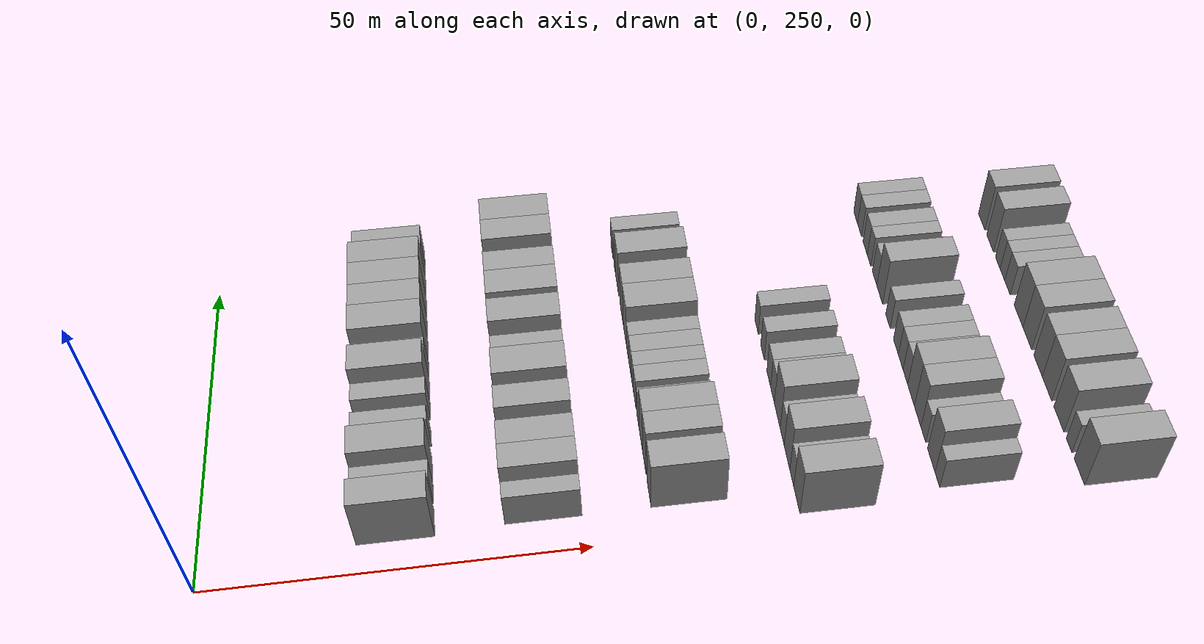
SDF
<sdf version="1.6">
 <world name="default">
  <model name="building_149">
   <static>1</static>
   <pose>25.0000 256.2875 0 0.000000 0.000000 0.000000</pose>
   <link name="link">
    <pose>0 0 4.50 0 0 0</pose>
    <collision name="collision"><geometry><box><size>10.0000 4.0302 9.0000</size></box></geometry></collision>
    <visual name="visual">
     <cast_shadows>0</cast_shadows>
     <geometry><box><size>10.0000 4.0302 9.0000</size></box></geometry>
     <material>
      <script>
       <uri>model://grey_wall/materials/scripts</uri>
       <uri>model://grey_wall/materials/textures</uri>
       <name>vrc/grey_wall</name>
      </script>
     </material>
    </visual>
   </link>
  </model>
  <model name="building_150">
   <static>1</static>
   <pose>25.0000 260.7521 0 0.000000 0.000000 0.000000</pose>
   <link name="link">
    <pose>0 0 3.00 0 0 0</pose>
    <collision name="collision"><geometry><box><size>10.0000 2.8990 6.0000</size></box></geometry></collision>
    <visual name="visual">
     <cast_shadows>0</cast_shadows>
     <geometry><box><size>10.0000 2.8990 6.0000</size></box></geometry>
     <material>
      <script>
       <uri>model://grey_wall/materials/scripts</uri>
       <uri>model://grey_wall/materials/textures</uri>
       <name>vrc/grey_wall</name>
      </script>
     </material>
    </visual>
   </link>
  </model>
  <model name="building_151">
   <static>1</static>
   <pose>25.0000 264.3933 0 0.000000 0.000000 0.000000</pose>
   <link name="link">
    <pose>0 0 4.50 0 0 0</pose>
    <collision name="collision"><geometry><box><size>10.0000 4.3833 9.0000</size></box></geometry></collision>
    <visual name="visual">
     <cast_shadows>0</cast_shadows>
     <geometry><box><size>10.0000 4.3833 9.0000</size></box></geometry>
     <material>
      <script>
       <uri>model://grey_wall/materials/scripts</uri>
       <uri>model://grey_wall/materials/textures</uri>
       <name>vrc/grey_wall</name>
      </script>
     </material>
    </visual>
   </link>
  </model>
  <model name="building_152">
   <static>1</static>
   <pose>25.0000 269.8331 0 0.000000 0.000000 0.000000</pose>
   <link name="link">
    <pose>0 0 3.00 0 0 0</pose>
    <collision name="collision"><geometry><box><size>10.0000 2.4964 6.0000</size></box></geometry></collision>
    <visual name="visual">
     <cast_shadows>0</cast_shadows>
     <geometry><box><size>10.0000 2.4964 6.0000</size></box></geometry>
     <material>
      <script>
       <uri>model://grey_wall/materials/scripts</uri>
       <uri>model://grey_wall/materials/textures</uri>
       <name>vrc/grey_wall</name>
      </script>
     </material>
    </visual>
   </link>
  </model>
  <model name="building_153">
   <static>1</static>
   <pose>25.0000 274.5051 0 0.000000 0.000000 0.000000</pose>
   <link name="link">
    <pose>0 0 3.00 0 0 0</pose>
    <collision name="collision"><geometry><box><size>10.0000 2.8477 6.0000</size></box></geometry></collision>
    <visual name="visual">
     <cast_shadows>0</cast_shadows>
     <geometry><box><size>10.0000 2.8477 6.0000</size></box></geometry>
     <material>
      <script>
       <uri>model://grey_wall/materials/scripts</uri>
       <uri>model://grey_wall/materials/textures</uri>
       <name>vrc/grey_wall</name>
      </script>
     </material>
    </visual>
   </link>
  </model>
  <model name="building_154">
   <static>1</static>
   <pose>25.0000 278.0814 0 0.000000 0.000000 0.000000</pose>
   <link name="link">
    <pose>0 0 4.50 0 0 0</pose>
    <collision name="collision"><geometry><box><size>10.0000 4.3049 9.0000</size></box></geometry></collision>
    <visual name="visual">
     <cast_shadows>0</cast_shadows>
     <geometry><box><size>10.0000 4.3049 9.0000</size></box></geometry>
     <material>
      <script>
       <uri>model://grey_wall/materials/scripts</uri>
       <uri>model://grey_wall/materials/textures</uri>
       <name>vrc/grey_wall</name>
      </script>
     </material>
    </visual>
   </link>
  </model>
  <model name="building_155">
   <static>1</static>
   <pose>25.0000 281.6127 0 0.000000 0.000000 0.000000</pose>
   <link name="link">
    <pose>0 0 3.00 0 0 0</pose>
    <collision name="collision"><geometry><box><size>10.0000 2.7576 6.0000</size></box></geometry></collision>
    <visual name="visual">
     <cast_shadows>0</cast_shadows>
     <geometry><box><size>10.0000 2.7576 6.0000</size></box></geometry>
     <material>
      <script>
       <uri>model://grey_wall/materials/scripts</uri>
       <uri>model://grey_wall/materials/textures</uri>
       <name>vrc/grey_wall</name>
      </script>
     </material>
    </visual>
   </link>
  </model>
  <model name="building_156">
   <static>1</static>
   <pose>25.0000 285.2394 0 0.000000 0.000000 0.000000</pose>
   <link name="link">
    <pose>0 0 4.50 0 0 0</pose>
    <collision name="collision"><geometry><box><size>10.0000 4.4959 9.0000</size></box></geometry></collision>
    <visual name="visual">
     <cast_shadows>0</cast_shadows>
     <geometry><box><size>10.0000 4.4959 9.0000</size></box></geometry>
     <material>
      <script>
       <uri>model://grey_wall/materials/scripts</uri>
       <uri>model://grey_wall/materials/textures</uri>
       <name>vrc/grey_wall</name>
      </script>
     </material>
    </visual>
   </link>
  </model>
  <model name="building_157">
   <static>1</static>
   <pose>25.0000 289.4102 0 0.000000 0.000000 0.000000</pose>
   <link name="link">
    <pose>0 0 4.50 0 0 0</pose>
    <collision name="collision"><geometry><box><size>10.0000 3.8458 9.0000</size></box></geometry></collision>
    <visual name="visual">
     <cast_shadows>0</cast_shadows>
     <geometry><box><size>10.0000 3.8458 9.0000</size></box></geometry>
     <material>
      <script>
       <uri>model://grey_wall/materials/scripts</uri>
       <uri>model://grey_wall/materials/textures</uri>
       <name>vrc/grey_wall</name>
      </script>
     </material>
    </visual>
   </link>
  </model>
  <model name="building_158">
   <static>1</static>
   <pose>25.0000 293.4467 0 0.000000 0.000000 0.000000</pose>
   <link name="link">
    <pose>0 0 4.50 0 0 0</pose>
    <collision name="collision"><geometry><box><size>10.0000 4.2271 9.0000</size></box></geometry></collision>
    <visual name="visual">
     <cast_shadows>0</cast_shadows>
     <geometry><box><size>10.0000 4.2271 9.0000</size></box></geometry>
     <material>
      <script>
       <uri>model://grey_wall/materials/scripts</uri>
       <uri>model://grey_wall/materials/textures</uri>
       <name>vrc/grey_wall</name>
      </script>
     </material>
    </visual>
   </link>
  </model>
  <model name="building_159">
   <static>1</static>
   <pose>25.0000 297.5806 0 0.000000 0.000000 0.000000</pose>
   <link name="link">
    <pose>0 0 4.50 0 0 0</pose>
    <collision name="collision"><geometry><box><size>10.0000 4.0407 9.0000</size></box></geometry></collision>
    <visual name="visual">
     <cast_shadows>0</cast_shadows>
     <geometry><box><size>10.0000 4.0407 9.0000</size></box></geometry>
     <material>
      <script>
       <uri>model://grey_wall/materials/scripts</uri>
       <uri>model://grey_wall/materials/textures</uri>
       <name>vrc/grey_wall</name>
      </script>
     </material>
    </visual>
   </link>
  </model>
  <model name="building_160">
   <static>1</static>
   <pose>25.0000 300.8337 0 0.000000 0.000000 0.000000</pose>
   <link name="link">
    <pose>0 0 3.00 0 0 0</pose>
    <collision name="collision"><geometry><box><size>10.0000 2.4657 6.0000</size></box></geometry></collision>
    <visual name="visual">
     <cast_shadows>0</cast_shadows>
     <geometry><box><size>10.0000 2.4657 6.0000</size></box></geometry>
     <material>
      <script>
       <uri>model://grey_wall/materials/scripts</uri>
       <uri>model://grey_wall/materials/textures</uri>
       <name>vrc/grey_wall</name>
      </script>
     </material>
    </visual>
   </link>
  </model>
  <model name="building_161">
   <static>1</static>
   <pose>25.0000 303.4272 0 0.000000 0.000000 0.000000</pose>
   <link name="link">
    <pose>0 0 3.00 0 0 0</pose>
    <collision name="collision"><geometry><box><size>10.0000 2.7211 6.0000</size></box></geometry></collision>
    <visual name="visual">
     <cast_shadows>0</cast_shadows>
     <geometry><box><size>10.0000 2.7211 6.0000</size></box></geometry>
     <material>
      <script>
       <uri>model://grey_wall/materials/scripts</uri>
       <uri>model://grey_wall/materials/textures</uri>
       <name>vrc/grey_wall</name>
      </script>
     </material>
    </visual>
   </link>
  </model>
  <model name="building_328">
   <static>1</static>
   <pose>44.0000 256.1833 0 0.000000 0.000000 0.000000</pose>
   <link name="link">
    <pose>0 0 3.00 0 0 0</pose>
    <collision name="collision"><geometry><box><size>10.0000 2.4962 6.0000</size></box></geometry></collision>
    <visual name="visual">
     <cast_shadows>0</cast_shadows>
     <geometry><box><size>10.0000 2.4962 6.0000</size></box></geometry>
     <material>
      <script>
       <uri>model://grey_wall/materials/scripts</uri>
       <uri>model://grey_wall/materials/textures</uri>
       <name>vrc/grey_wall</name>
      </script>
     </material>
    </visual>
   </link>
  </model>
  <model name="building_329">
   <static>1</static>
   <pose>44.0000 259.3331 0 0.000000 0.000000 0.000000</pose>
   <link name="link">
    <pose>0 0 4.50 0 0 0</pose>
    <collision name="collision"><geometry><box><size>10.0000 3.8034 9.0000</size></box></geometry></collision>
    <visual name="visual">
     <cast_shadows>0</cast_shadows>
     <geometry><box><size>10.0000 3.8034 9.0000</size></box></geometry>
     <material>
      <script>
       <uri>model://grey_wall/materials/scripts</uri>
       <uri>model://grey_wall/materials/textures</uri>
       <name>vrc/grey_wall</name>
      </script>
     </material>
    </visual>
   </link>
  </model>
  <model name="building_330">
   <static>1</static>
   <pose>44.0000 263.1287 0 0.000000 0.000000 0.000000</pose>
   <link name="link">
    <pose>0 0 4.50 0 0 0</pose>
    <collision name="collision"><geometry><box><size>10.0000 3.7879 9.0000</size></box></geometry></collision>
    <visual name="visual">
     <cast_shadows>0</cast_shadows>
     <geometry><box><size>10.0000 3.7879 9.0000</size></box></geometry>
     <material>
      <script>
       <uri>model://grey_wall/materials/scripts</uri>
       <uri>model://grey_wall/materials/textures</uri>
       <name>vrc/grey_wall</name>
      </script>
     </material>
    </visual>
   </link>
  </model>
  <model name="building_331">
   <static>1</static>
   <pose>44.0000 268.9019 0 0.000000 0.000000 0.000000</pose>
   <link name="link">
    <pose>0 0 4.50 0 0 0</pose>
    <collision name="collision"><geometry><box><size>10.0000 3.7585 9.0000</size></box></geometry></collision>
    <visual name="visual">
     <cast_shadows>0</cast_shadows>
     <geometry><box><size>10.0000 3.7585 9.0000</size></box></geometry>
     <material>
      <script>
       <uri>model://grey_wall/materials/scripts</uri>
       <uri>model://grey_wall/materials/textures</uri>
       <name>vrc/grey_wall</name>
      </script>
     </material>
    </visual>
   </link>
  </model>
  <model name="building_332">
   <static>1</static>
   <pose>44.0000 275.0264 0 0.000000 0.000000 0.000000</pose>
   <link name="link">
    <pose>0 0 4.50 0 0 0</pose>
    <collision name="collision"><geometry><box><size>10.0000 4.4905 9.0000</size></box></geometry></collision>
    <visual name="visual">
     <cast_shadows>0</cast_shadows>
     <geometry><box><size>10.0000 4.4905 9.0000</size></box></geometry>
     <material>
      <script>
       <uri>model://grey_wall/materials/scripts</uri>
       <uri>model://grey_wall/materials/textures</uri>
       <name>vrc/grey_wall</name>
      </script>
     </material>
    </visual>
   </link>
  </model>
  <model name="building_333">
   <static>1</static>
   <pose>44.0000 280.6144 0 0.000000 0.000000 0.000000</pose>
   <link name="link">
    <pose>0 0 3.00 0 0 0</pose>
    <collision name="collision"><geometry><box><size>10.0000 2.6854 6.0000</size></box></geometry></collision>
    <visual name="visual">
     <cast_shadows>0</cast_shadows>
     <geometry><box><size>10.0000 2.6854 6.0000</size></box></geometry>
     <material>
      <script>
       <uri>model://grey_wall/materials/scripts</uri>
       <uri>model://grey_wall/materials/textures</uri>
       <name>vrc/grey_wall</name>
      </script>
     </material>
    </visual>
   </link>
  </model>
  <model name="building_334">
   <static>1</static>
   <pose>44.0000 284.0671 0 0.000000 0.000000 0.000000</pose>
   <link name="link">
    <pose>0 0 4.50 0 0 0</pose>
    <collision name="collision"><geometry><box><size>10.0000 4.2200 9.0000</size></box></geometry></collision>
    <visual name="visual">
     <cast_shadows>0</cast_shadows>
     <geometry><box><size>10.0000 4.2200 9.0000</size></box></geometry>
     <material>
      <script>
       <uri>model://grey_wall/materials/scripts</uri>
       <uri>model://grey_wall/materials/textures</uri>
       <name>vrc/grey_wall</name>
      </script>
     </material>
    </visual>
   </link>
  </model>
  <model name="building_335">
   <static>1</static>
   <pose>44.0000 289.3468 0 0.000000 0.000000 0.000000</pose>
   <link name="link">
    <pose>0 0 4.50 0 0 0</pose>
    <collision name="collision"><geometry><box><size>10.0000 4.3394 9.0000</size></box></geometry></collision>
    <visual name="visual">
     <cast_shadows>0</cast_shadows>
     <geometry><box><size>10.0000 4.3394 9.0000</size></box></geometry>
     <material>
      <script>
       <uri>model://grey_wall/materials/scripts</uri>
       <uri>model://grey_wall/materials/textures</uri>
       <name>vrc/grey_wall</name>
      </script>
     </material>
    </visual>
   </link>
  </model>
  <model name="building_336">
   <static>1</static>
   <pose>44.0000 293.3543 0 0.000000 0.000000 0.000000</pose>
   <link name="link">
    <pose>0 0 4.50 0 0 0</pose>
    <collision name="collision"><geometry><box><size>10.0000 3.6756 9.0000</size></box></geometry></collision>
    <visual name="visual">
     <cast_shadows>0</cast_shadows>
     <geometry><box><size>10.0000 3.6756 9.0000</size></box></geometry>
     <material>
      <script>
       <uri>model://grey_wall/materials/scripts</uri>
       <uri>model://grey_wall/materials/textures</uri>
       <name>vrc/grey_wall</name>
      </script>
     </material>
    </visual>
   </link>
  </model>
  <model name="building_337">
   <static>1</static>
   <pose>44.0000 296.3941 0 0.000000 0.000000 0.000000</pose>
   <link name="link">
    <pose>0 0 3.00 0 0 0</pose>
    <collision name="collision"><geometry><box><size>10.0000 2.4042 6.0000</size></box></geometry></collision>
    <visual name="visual">
     <cast_shadows>0</cast_shadows>
     <geometry><box><size>10.0000 2.4042 6.0000</size></box></geometry>
     <material>
      <script>
       <uri>model://grey_wall/materials/scripts</uri>
       <uri>model://grey_wall/materials/textures</uri>
       <name>vrc/grey_wall</name>
      </script>
     </material>
    </visual>
   </link>
  </model>
  <model name="building_338">
   <static>1</static>
   <pose>44.0000 299.6221 0 0.000000 0.000000 0.000000</pose>
   <link name="link">
    <pose>0 0 4.50 0 0 0</pose>
    <collision name="collision"><geometry><box><size>10.0000 4.0518 9.0000</size></box></geometry></collision>
    <visual name="visual">
     <cast_shadows>0</cast_shadows>
     <geometry><box><size>10.0000 4.0518 9.0000</size></box></geometry>
     <material>
      <script>
       <uri>model://grey_wall/materials/scripts</uri>
       <uri>model://grey_wall/materials/textures</uri>
       <name>vrc/grey_wall</name>
      </script>
     </material>
    </visual>
   </link>
  </model>
  <model name="building_339">
   <static>1</static>
   <pose>44.0000 303.7917 0 0.000000 0.000000 0.000000</pose>
   <link name="link">
    <pose>0 0 4.50 0 0 0</pose>
    <collision name="collision"><geometry><box><size>10.0000 4.2873 9.0000</size></box></geometry></collision>
    <visual name="visual">
     <cast_shadows>0</cast_shadows>
     <geometry><box><size>10.0000 4.2873 9.0000</size></box></geometry>
     <material>
      <script>
       <uri>model://grey_wall/materials/scripts</uri>
       <uri>model://grey_wall/materials/textures</uri>
       <name>vrc/grey_wall</name>
      </script>
     </material>
    </visual>
   </link>
  </model>
  <model name="building_499">
   <static>1</static>
   <pose>63.0000 257.1512 0 0.000000 0.000000 0.000000</pose>
   <link name="link">
    <pose>0 0 4.50 0 0 0</pose>
    <collision name="collision"><geometry><box><size>10.0000 4.2357 9.0000</size></box></geometry></collision>
    <visual name="visual">
     <cast_shadows>0</cast_shadows>
     <geometry><box><size>10.0000 4.2357 9.0000</size></box></geometry>
     <material>
      <script>
       <uri>model://grey_wall/materials/scripts</uri>
       <uri>model://grey_wall/materials/textures</uri>
       <name>vrc/grey_wall</name>
      </script>
     </material>
    </visual>
   </link>
  </model>
  <model name="building_500">
   <static>1</static>
   <pose>63.0000 262.0753 0 0.000000 0.000000 0.000000</pose>
   <link name="link">
    <pose>0 0 4.50 0 0 0</pose>
    <collision name="collision"><geometry><box><size>10.0000 3.6125 9.0000</size></box></geometry></collision>
    <visual name="visual">
     <cast_shadows>0</cast_shadows>
     <geometry><box><size>10.0000 3.6125 9.0000</size></box></geometry>
     <material>
      <script>
       <uri>model://grey_wall/materials/scripts</uri>
       <uri>model://grey_wall/materials/textures</uri>
       <name>vrc/grey_wall</name>
      </script>
     </material>
    </visual>
   </link>
  </model>
  <model name="building_501">
   <static>1</static>
   <pose>63.0000 265.7761 0 0.000000 0.000000 0.000000</pose>
   <link name="link">
    <pose>0 0 4.50 0 0 0</pose>
    <collision name="collision"><geometry><box><size>10.0000 3.7891 9.0000</size></box></geometry></collision>
    <visual name="visual">
     <cast_shadows>0</cast_shadows>
     <geometry><box><size>10.0000 3.7891 9.0000</size></box></geometry>
     <material>
      <script>
       <uri>model://grey_wall/materials/scripts</uri>
       <uri>model://grey_wall/materials/textures</uri>
       <name>vrc/grey_wall</name>
      </script>
     </material>
    </visual>
   </link>
  </model>
  <model name="building_502">
   <static>1</static>
   <pose>63.0000 268.9672 0 0.000000 0.000000 0.000000</pose>
   <link name="link">
    <pose>0 0 3.00 0 0 0</pose>
    <collision name="collision"><geometry><box><size>10.0000 2.5930 6.0000</size></box></geometry></collision>
    <visual name="visual">
     <cast_shadows>0</cast_shadows>
     <geometry><box><size>10.0000 2.5930 6.0000</size></box></geometry>
     <material>
      <script>
       <uri>model://grey_wall/materials/scripts</uri>
       <uri>model://grey_wall/materials/textures</uri>
       <name>vrc/grey_wall</name>
      </script>
     </material>
    </visual>
   </link>
  </model>
  <model name="building_503">
   <static>1</static>
   <pose>63.0000 272.7064 0 0.000000 0.000000 0.000000</pose>
   <link name="link">
    <pose>0 0 3.00 0 0 0</pose>
    <collision name="collision"><geometry><box><size>10.0000 2.8855 6.0000</size></box></geometry></collision>
    <visual name="visual">
     <cast_shadows>0</cast_shadows>
     <geometry><box><size>10.0000 2.8855 6.0000</size></box></geometry>
     <material>
      <script>
       <uri>model://grey_wall/materials/scripts</uri>
       <uri>model://grey_wall/materials/textures</uri>
       <name>vrc/grey_wall</name>
      </script>
     </material>
    </visual>
   </link>
  </model>
  <model name="building_504">
   <static>1</static>
   <pose>63.0000 275.3642 0 0.000000 0.000000 0.000000</pose>
   <link name="link">
    <pose>0 0 3.00 0 0 0</pose>
    <collision name="collision"><geometry><box><size>10.0000 2.4302 6.0000</size></box></geometry></collision>
    <visual name="visual">
     <cast_shadows>0</cast_shadows>
     <geometry><box><size>10.0000 2.4302 6.0000</size></box></geometry>
     <material>
      <script>
       <uri>model://grey_wall/materials/scripts</uri>
       <uri>model://grey_wall/materials/textures</uri>
       <name>vrc/grey_wall</name>
      </script>
     </material>
    </visual>
   </link>
  </model>
  <model name="building_505">
   <static>1</static>
   <pose>63.0000 278.0551 0 0.000000 0.000000 0.000000</pose>
   <link name="link">
    <pose>0 0 3.00 0 0 0</pose>
    <collision name="collision"><geometry><box><size>10.0000 2.9516 6.0000</size></box></geometry></collision>
    <visual name="visual">
     <cast_shadows>0</cast_shadows>
     <geometry><box><size>10.0000 2.9516 6.0000</size></box></geometry>
     <material>
      <script>
       <uri>model://grey_wall/materials/scripts</uri>
       <uri>model://grey_wall/materials/textures</uri>
       <name>vrc/grey_wall</name>
      </script>
     </material>
    </visual>
   </link>
  </model>
  <model name="building_506">
   <static>1</static>
   <pose>63.0000 280.7585 0 0.000000 0.000000 0.000000</pose>
   <link name="link">
    <pose>0 0 3.00 0 0 0</pose>
    <collision name="collision"><geometry><box><size>10.0000 2.4553 6.0000</size></box></geometry></collision>
    <visual name="visual">
     <cast_shadows>0</cast_shadows>
     <geometry><box><size>10.0000 2.4553 6.0000</size></box></geometry>
     <material>
      <script>
       <uri>model://grey_wall/materials/scripts</uri>
       <uri>model://grey_wall/materials/textures</uri>
       <name>vrc/grey_wall</name>
      </script>
     </material>
    </visual>
   </link>
  </model>
  <model name="building_507">
   <static>1</static>
   <pose>63.0000 284.2350 0 0.000000 0.000000 0.000000</pose>
   <link name="link">
    <pose>0 0 4.50 0 0 0</pose>
    <collision name="collision"><geometry><box><size>10.0000 4.4977 9.0000</size></box></geometry></collision>
    <visual name="visual">
     <cast_shadows>0</cast_shadows>
     <geometry><box><size>10.0000 4.4977 9.0000</size></box></geometry>
     <material>
      <script>
       <uri>model://grey_wall/materials/scripts</uri>
       <uri>model://grey_wall/materials/textures</uri>
       <name>vrc/grey_wall</name>
      </script>
     </material>
    </visual>
   </link>
  </model>
  <model name="building_508">
   <static>1</static>
   <pose>63.0000 288.4070 0 0.000000 0.000000 0.000000</pose>
   <link name="link">
    <pose>0 0 4.50 0 0 0</pose>
    <collision name="collision"><geometry><box><size>10.0000 3.8463 9.0000</size></box></geometry></collision>
    <visual name="visual">
     <cast_shadows>0</cast_shadows>
     <geometry><box><size>10.0000 3.8463 9.0000</size></box></geometry>
     <material>
      <script>
       <uri>model://grey_wall/materials/scripts</uri>
       <uri>model://grey_wall/materials/textures</uri>
       <name>vrc/grey_wall</name>
      </script>
     </material>
    </visual>
   </link>
  </model>
  <model name="building_509">
   <static>1</static>
   <pose>63.0000 294.4064 0 0.000000 0.000000 0.000000</pose>
   <link name="link">
    <pose>0 0 4.50 0 0 0</pose>
    <collision name="collision"><geometry><box><size>10.0000 4.1525 9.0000</size></box></geometry></collision>
    <visual name="visual">
     <cast_shadows>0</cast_shadows>
     <geometry><box><size>10.0000 4.1525 9.0000</size></box></geometry>
     <material>
      <script>
       <uri>model://grey_wall/materials/scripts</uri>
       <uri>model://grey_wall/materials/textures</uri>
       <name>vrc/grey_wall</name>
      </script>
     </material>
    </visual>
   </link>
  </model>
  <model name="building_510">
   <static>1</static>
   <pose>63.0000 297.6994 0 0.000000 0.000000 0.000000</pose>
   <link name="link">
    <pose>0 0 3.00 0 0 0</pose>
    <collision name="collision"><geometry><box><size>10.0000 2.4335 6.0000</size></box></geometry></collision>
    <visual name="visual">
     <cast_shadows>0</cast_shadows>
     <geometry><box><size>10.0000 2.4335 6.0000</size></box></geometry>
     <material>
      <script>
       <uri>model://grey_wall/materials/scripts</uri>
       <uri>model://grey_wall/materials/textures</uri>
       <name>vrc/grey_wall</name>
      </script>
     </material>
    </visual>
   </link>
  </model>
  <model name="building_511">
   <static>1</static>
   <pose>63.0000 301.2693 0 0.000000 0.000000 0.000000</pose>
   <link name="link">
    <pose>0 0 3.00 0 0 0</pose>
    <collision name="collision"><geometry><box><size>10.0000 2.7063 6.0000</size></box></geometry></collision>
    <visual name="visual">
     <cast_shadows>0</cast_shadows>
     <geometry><box><size>10.0000 2.7063 6.0000</size></box></geometry>
     <material>
      <script>
       <uri>model://grey_wall/materials/scripts</uri>
       <uri>model://grey_wall/materials/textures</uri>
       <name>vrc/grey_wall</name>
      </script>
     </material>
    </visual>
   </link>
  </model>
  <model name="building_674">
   <static>1</static>
   <pose>82.0000 253.7051 0 0.000000 0.000000 0.000000</pose>
   <link name="link">
    <pose>0 0 4.50 0 0 0</pose>
    <collision name="collision"><geometry><box><size>10.0000 4.2295 9.0000</size></box></geometry></collision>
    <visual name="visual">
     <cast_shadows>0</cast_shadows>
     <geometry><box><size>10.0000 4.2295 9.0000</size></box></geometry>
     <material>
      <script>
       <uri>model://grey_wall/materials/scripts</uri>
       <uri>model://grey_wall/materials/textures</uri>
       <name>vrc/grey_wall</name>
      </script>
     </material>
    </visual>
   </link>
  </model>
  <model name="building_675">
   <static>1</static>
   <pose>82.0000 257.1515 0 0.000000 0.000000 0.000000</pose>
   <link name="link">
    <pose>0 0 3.00 0 0 0</pose>
    <collision name="collision"><geometry><box><size>10.0000 2.6634 6.0000</size></box></geometry></collision>
    <visual name="visual">
     <cast_shadows>0</cast_shadows>
     <geometry><box><size>10.0000 2.6634 6.0000</size></box></geometry>
     <material>
      <script>
       <uri>model://grey_wall/materials/scripts</uri>
       <uri>model://grey_wall/materials/textures</uri>
       <name>vrc/grey_wall</name>
      </script>
     </material>
    </visual>
   </link>
  </model>
  <model name="building_676">
   <static>1</static>
   <pose>82.0000 260.5434 0 0.000000 0.000000 0.000000</pose>
   <link name="link">
    <pose>0 0 4.50 0 0 0</pose>
    <collision name="collision"><geometry><box><size>10.0000 4.1204 9.0000</size></box></geometry></collision>
    <visual name="visual">
     <cast_shadows>0</cast_shadows>
     <geometry><box><size>10.0000 4.1204 9.0000</size></box></geometry>
     <material>
      <script>
       <uri>model://grey_wall/materials/scripts</uri>
       <uri>model://grey_wall/materials/textures</uri>
       <name>vrc/grey_wall</name>
      </script>
     </material>
    </visual>
   </link>
  </model>
  <model name="building_677">
   <static>1</static>
   <pose>82.0000 264.0253 0 0.000000 0.000000 0.000000</pose>
   <link name="link">
    <pose>0 0 3.00 0 0 0</pose>
    <collision name="collision"><geometry><box><size>10.0000 2.8435 6.0000</size></box></geometry></collision>
    <visual name="visual">
     <cast_shadows>0</cast_shadows>
     <geometry><box><size>10.0000 2.8435 6.0000</size></box></geometry>
     <material>
      <script>
       <uri>model://grey_wall/materials/scripts</uri>
       <uri>model://grey_wall/materials/textures</uri>
       <name>vrc/grey_wall</name>
      </script>
     </material>
    </visual>
   </link>
  </model>
  <model name="building_678">
   <static>1</static>
   <pose>82.0000 267.6121 0 0.000000 0.000000 0.000000</pose>
   <link name="link">
    <pose>0 0 4.50 0 0 0</pose>
    <collision name="collision"><geometry><box><size>10.0000 4.3301 9.0000</size></box></geometry></collision>
    <visual name="visual">
     <cast_shadows>0</cast_shadows>
     <geometry><box><size>10.0000 4.3301 9.0000</size></box></geometry>
     <material>
      <script>
       <uri>model://grey_wall/materials/scripts</uri>
       <uri>model://grey_wall/materials/textures</uri>
       <name>vrc/grey_wall</name>
      </script>
     </material>
    </visual>
   </link>
  </model>
  <model name="building_679">
   <static>1</static>
   <pose>82.0000 271.1962 0 0.000000 0.000000 0.000000</pose>
   <link name="link">
    <pose>0 0 3.00 0 0 0</pose>
    <collision name="collision"><geometry><box><size>10.0000 2.8381 6.0000</size></box></geometry></collision>
    <visual name="visual">
     <cast_shadows>0</cast_shadows>
     <geometry><box><size>10.0000 2.8381 6.0000</size></box></geometry>
     <material>
      <script>
       <uri>model://grey_wall/materials/scripts</uri>
       <uri>model://grey_wall/materials/textures</uri>
       <name>vrc/grey_wall</name>
      </script>
     </material>
    </visual>
   </link>
  </model>
  <model name="building_680">
   <static>1</static>
   <pose>82.0000 274.0770 0 0.000000 0.000000 0.000000</pose>
   <link name="link">
    <pose>0 0 3.00 0 0 0</pose>
    <collision name="collision"><geometry><box><size>10.0000 2.9234 6.0000</size></box></geometry></collision>
    <visual name="visual">
     <cast_shadows>0</cast_shadows>
     <geometry><box><size>10.0000 2.9234 6.0000</size></box></geometry>
     <material>
      <script>
       <uri>model://grey_wall/materials/scripts</uri>
       <uri>model://grey_wall/materials/textures</uri>
       <name>vrc/grey_wall</name>
      </script>
     </material>
    </visual>
   </link>
  </model>
  <model name="building_681">
   <static>1</static>
   <pose>82.0000 278.9706 0 0.000000 0.000000 0.000000</pose>
   <link name="link">
    <pose>0 0 3.00 0 0 0</pose>
    <collision name="collision"><geometry><box><size>10.0000 2.8638 6.0000</size></box></geometry></collision>
    <visual name="visual">
     <cast_shadows>0</cast_shadows>
     <geometry><box><size>10.0000 2.8638 6.0000</size></box></geometry>
     <material>
      <script>
       <uri>model://grey_wall/materials/scripts</uri>
       <uri>model://grey_wall/materials/textures</uri>
       <name>vrc/grey_wall</name>
      </script>
     </material>
    </visual>
   </link>
  </model>
  <model name="building_682">
   <static>1</static>
   <pose>82.0000 283.8026 0 0.000000 0.000000 0.000000</pose>
   <link name="link">
    <pose>0 0 3.00 0 0 0</pose>
    <collision name="collision"><geometry><box><size>10.0000 2.8003 6.0000</size></box></geometry></collision>
    <visual name="visual">
     <cast_shadows>0</cast_shadows>
     <geometry><box><size>10.0000 2.8003 6.0000</size></box></geometry>
     <material>
      <script>
       <uri>model://grey_wall/materials/scripts</uri>
       <uri>model://grey_wall/materials/textures</uri>
       <name>vrc/grey_wall</name>
      </script>
     </material>
    </visual>
   </link>
  </model>
  <model name="building_846">
   <static>1</static>
   <pose>101.0000 254.3762 0 0.000000 0.000000 0.000000</pose>
   <link name="link">
    <pose>0 0 3.00 0 0 0</pose>
    <collision name="collision"><geometry><box><size>10.0000 2.4638 6.0000</size></box></geometry></collision>
    <visual name="visual">
     <cast_shadows>0</cast_shadows>
     <geometry><box><size>10.0000 2.4638 6.0000</size></box></geometry>
     <material>
      <script>
       <uri>model://grey_wall/materials/scripts</uri>
       <uri>model://grey_wall/materials/textures</uri>
       <name>vrc/grey_wall</name>
      </script>
     </material>
    </visual>
   </link>
  </model>
  <model name="building_847">
   <static>1</static>
   <pose>101.0000 257.5766 0 0.000000 0.000000 0.000000</pose>
   <link name="link">
    <pose>0 0 4.50 0 0 0</pose>
    <collision name="collision"><geometry><box><size>10.0000 3.9369 9.0000</size></box></geometry></collision>
    <visual name="visual">
     <cast_shadows>0</cast_shadows>
     <geometry><box><size>10.0000 3.9369 9.0000</size></box></geometry>
     <material>
      <script>
       <uri>model://grey_wall/materials/scripts</uri>
       <uri>model://grey_wall/materials/textures</uri>
       <name>vrc/grey_wall</name>
      </script>
     </material>
    </visual>
   </link>
  </model>
  <model name="building_848">
   <static>1</static>
   <pose>101.0000 261.8542 0 0.000000 0.000000 0.000000</pose>
   <link name="link">
    <pose>0 0 3.00 0 0 0</pose>
    <collision name="collision"><geometry><box><size>10.0000 2.6184 6.0000</size></box></geometry></collision>
    <visual name="visual">
     <cast_shadows>0</cast_shadows>
     <geometry><box><size>10.0000 2.6184 6.0000</size></box></geometry>
     <material>
      <script>
       <uri>model://grey_wall/materials/scripts</uri>
       <uri>model://grey_wall/materials/textures</uri>
       <name>vrc/grey_wall</name>
      </script>
     </material>
    </visual>
   </link>
  </model>
  <model name="building_849">
   <static>1</static>
   <pose>101.0000 264.9686 0 0.000000 0.000000 0.000000</pose>
   <link name="link">
    <pose>0 0 4.50 0 0 0</pose>
    <collision name="collision"><geometry><box><size>10.0000 3.6103 9.0000</size></box></geometry></collision>
    <visual name="visual">
     <cast_shadows>0</cast_shadows>
     <geometry><box><size>10.0000 3.6103 9.0000</size></box></geometry>
     <material>
      <script>
       <uri>model://grey_wall/materials/scripts</uri>
       <uri>model://grey_wall/materials/textures</uri>
       <name>vrc/grey_wall</name>
      </script>
     </material>
    </visual>
   </link>
  </model>
  <model name="building_850">
   <static>1</static>
   <pose>101.0000 268.6789 0 0.000000 0.000000 0.000000</pose>
   <link name="link">
    <pose>0 0 4.50 0 0 0</pose>
    <collision name="collision"><geometry><box><size>10.0000 3.8104 9.0000</size></box></geometry></collision>
    <visual name="visual">
     <cast_shadows>0</cast_shadows>
     <geometry><box><size>10.0000 3.8104 9.0000</size></box></geometry>
     <material>
      <script>
       <uri>model://grey_wall/materials/scripts</uri>
       <uri>model://grey_wall/materials/textures</uri>
       <name>vrc/grey_wall</name>
      </script>
     </material>
    </visual>
   </link>
  </model>
  <model name="building_851">
   <static>1</static>
   <pose>101.0000 271.9367 0 0.000000 0.000000 0.000000</pose>
   <link name="link">
    <pose>0 0 3.00 0 0 0</pose>
    <collision name="collision"><geometry><box><size>10.0000 2.7052 6.0000</size></box></geometry></collision>
    <visual name="visual">
     <cast_shadows>0</cast_shadows>
     <geometry><box><size>10.0000 2.7052 6.0000</size></box></geometry>
     <material>
      <script>
       <uri>model://grey_wall/materials/scripts</uri>
       <uri>model://grey_wall/materials/textures</uri>
       <name>vrc/grey_wall</name>
      </script>
     </material>
    </visual>
   </link>
  </model>
  <model name="building_852">
   <static>1</static>
   <pose>101.0000 274.6758 0 0.000000 0.000000 0.000000</pose>
   <link name="link">
    <pose>0 0 3.00 0 0 0</pose>
    <collision name="collision"><geometry><box><size>10.0000 2.7730 6.0000</size></box></geometry></collision>
    <visual name="visual">
     <cast_shadows>0</cast_shadows>
     <geometry><box><size>10.0000 2.7730 6.0000</size></box></geometry>
     <material>
      <script>
       <uri>model://grey_wall/materials/scripts</uri>
       <uri>model://grey_wall/materials/textures</uri>
       <name>vrc/grey_wall</name>
      </script>
     </material>
    </visual>
   </link>
  </model>
  <model name="building_853">
   <static>1</static>
   <pose>101.0000 277.5107 0 0.000000 0.000000 0.000000</pose>
   <link name="link">
    <pose>0 0 3.00 0 0 0</pose>
    <collision name="collision"><geometry><box><size>10.0000 2.8969 6.0000</size></box></geometry></collision>
    <visual name="visual">
     <cast_shadows>0</cast_shadows>
     <geometry><box><size>10.0000 2.8969 6.0000</size></box></geometry>
     <material>
      <script>
       <uri>model://grey_wall/materials/scripts</uri>
       <uri>model://grey_wall/materials/textures</uri>
       <name>vrc/grey_wall</name>
      </script>
     </material>
    </visual>
   </link>
  </model>
  <model name="building_854">
   <static>1</static>
   <pose>101.0000 282.3296 0 0.000000 0.000000 0.000000</pose>
   <link name="link">
    <pose>0 0 3.00 0 0 0</pose>
    <collision name="collision"><geometry><box><size>10.0000 2.7409 6.0000</size></box></geometry></collision>
    <visual name="visual">
     <cast_shadows>0</cast_shadows>
     <geometry><box><size>10.0000 2.7409 6.0000</size></box></geometry>
     <material>
      <script>
       <uri>model://grey_wall/materials/scripts</uri>
       <uri>model://grey_wall/materials/textures</uri>
       <name>vrc/grey_wall</name>
      </script>
     </material>
    </visual>
   </link>
  </model>
  <model name="building_855">
   <static>1</static>
   <pose>101.0000 287.5660 0 0.000000 0.000000 0.000000</pose>
   <link name="link">
    <pose>0 0 4.50 0 0 0</pose>
    <collision name="collision"><geometry><box><size>10.0000 3.7320 9.0000</size></box></geometry></collision>
    <visual name="visual">
     <cast_shadows>0</cast_shadows>
     <geometry><box><size>10.0000 3.7320 9.0000</size></box></geometry>
     <material>
      <script>
       <uri>model://grey_wall/materials/scripts</uri>
       <uri>model://grey_wall/materials/textures</uri>
       <name>vrc/grey_wall</name>
      </script>
     </material>
    </visual>
   </link>
  </model>
  <model name="building_856">
   <static>1</static>
   <pose>101.0000 290.8712 0 0.000000 0.000000 0.000000</pose>
   <link name="link">
    <pose>0 0 3.00 0 0 0</pose>
    <collision name="collision"><geometry><box><size>10.0000 2.8784 6.0000</size></box></geometry></collision>
    <visual name="visual">
     <cast_shadows>0</cast_shadows>
     <geometry><box><size>10.0000 2.8784 6.0000</size></box></geometry>
     <material>
      <script>
       <uri>model://grey_wall/materials/scripts</uri>
       <uri>model://grey_wall/materials/textures</uri>
       <name>vrc/grey_wall</name>
      </script>
     </material>
    </visual>
   </link>
  </model>
  <model name="building_857">
   <static>1</static>
   <pose>101.0000 294.5121 0 0.000000 0.000000 0.000000</pose>
   <link name="link">
    <pose>0 0 3.00 0 0 0</pose>
    <collision name="collision"><geometry><box><size>10.0000 2.4033 6.0000</size></box></geometry></collision>
    <visual name="visual">
     <cast_shadows>0</cast_shadows>
     <geometry><box><size>10.0000 2.4033 6.0000</size></box></geometry>
     <material>
      <script>
       <uri>model://grey_wall/materials/scripts</uri>
       <uri>model://grey_wall/materials/textures</uri>
       <name>vrc/grey_wall</name>
      </script>
     </material>
    </visual>
   </link>
  </model>
  <model name="building_858">
   <static>1</static>
   <pose>101.0000 297.1397 0 0.000000 0.000000 0.000000</pose>
   <link name="link">
    <pose>0 0 3.00 0 0 0</pose>
    <collision name="collision"><geometry><box><size>10.0000 2.8518 6.0000</size></box></geometry></collision>
    <visual name="visual">
     <cast_shadows>0</cast_shadows>
     <geometry><box><size>10.0000 2.8518 6.0000</size></box></geometry>
     <material>
      <script>
       <uri>model://grey_wall/materials/scripts</uri>
       <uri>model://grey_wall/materials/textures</uri>
       <name>vrc/grey_wall</name>
      </script>
     </material>
    </visual>
   </link>
  </model>
  <model name="building_859">
   <static>1</static>
   <pose>101.0000 300.9881 0 0.000000 0.000000 0.000000</pose>
   <link name="link">
    <pose>0 0 3.00 0 0 0</pose>
    <collision name="collision"><geometry><box><size>10.0000 2.8452 6.0000</size></box></geometry></collision>
    <visual name="visual">
     <cast_shadows>0</cast_shadows>
     <geometry><box><size>10.0000 2.8452 6.0000</size></box></geometry>
     <material>
      <script>
       <uri>model://grey_wall/materials/scripts</uri>
       <uri>model://grey_wall/materials/textures</uri>
       <name>vrc/grey_wall</name>
      </script>
     </material>
    </visual>
   </link>
  </model>
  <model name="building_860">
   <static>1</static>
   <pose>101.0000 303.7197 0 0.000000 0.000000 0.000000</pose>
   <link name="link">
    <pose>0 0 3.00 0 0 0</pose>
    <collision name="collision"><geometry><box><size>10.0000 2.6179 6.0000</size></box></geometry></collision>
    <visual name="visual">
     <cast_shadows>0</cast_shadows>
     <geometry><box><size>10.0000 2.6179 6.0000</size></box></geometry>
     <material>
      <script>
       <uri>model://grey_wall/materials/scripts</uri>
       <uri>model://grey_wall/materials/textures</uri>
       <name>vrc/grey_wall</name>
      </script>
     </material>
    </visual>
   </link>
  </model>
  <model name="building_1022">
   <static>1</static>
   <pose>120.0000 253.1769 0 0.000000 0.000000 0.000000</pose>
   <link name="link">
    <pose>0 0 4.50 0 0 0</pose>
    <collision name="collision"><geometry><box><size>10.0000 4.3610 9.0000</size></box></geometry></collision>
    <visual name="visual">
     <cast_shadows>0</cast_shadows>
     <geometry><box><size>10.0000 4.3610 9.0000</size></box></geometry>
     <material>
      <script>
       <uri>model://grey_wall/materials/scripts</uri>
       <uri>model://grey_wall/materials/textures</uri>
       <name>vrc/grey_wall</name>
      </script>
     </material>
    </visual>
   </link>
  </model>
  <model name="building_1023">
   <static>1</static>
   <pose>120.0000 257.5590 0 0.000000 0.000000 0.000000</pose>
   <link name="link">
    <pose>0 0 3.00 0 0 0</pose>
    <collision name="collision"><geometry><box><size>10.0000 2.4034 6.0000</size></box></geometry></collision>
    <visual name="visual">
     <cast_shadows>0</cast_shadows>
     <geometry><box><size>10.0000 2.4034 6.0000</size></box></geometry>
     <material>
      <script>
       <uri>model://grey_wall/materials/scripts</uri>
       <uri>model://grey_wall/materials/textures</uri>
       <name>vrc/grey_wall</name>
      </script>
     </material>
    </visual>
   </link>
  </model>
  <model name="building_1024">
   <static>1</static>
   <pose>120.0000 261.9646 0 0.000000 0.000000 0.000000</pose>
   <link name="link">
    <pose>0 0 4.50 0 0 0</pose>
    <collision name="collision"><geometry><box><size>10.0000 4.4077 9.0000</size></box></geometry></collision>
    <visual name="visual">
     <cast_shadows>0</cast_shadows>
     <geometry><box><size>10.0000 4.4077 9.0000</size></box></geometry>
     <material>
      <script>
       <uri>model://grey_wall/materials/scripts</uri>
       <uri>model://grey_wall/materials/textures</uri>
       <name>vrc/grey_wall</name>
      </script>
     </material>
    </visual>
   </link>
  </model>
  <model name="building_1025">
   <static>1</static>
   <pose>120.0000 267.3249 0 0.000000 0.000000 0.000000</pose>
   <link name="link">
    <pose>0 0 4.50 0 0 0</pose>
    <collision name="collision"><geometry><box><size>10.0000 4.3131 9.0000</size></box></geometry></collision>
    <visual name="visual">
     <cast_shadows>0</cast_shadows>
     <geometry><box><size>10.0000 4.3131 9.0000</size></box></geometry>
     <material>
      <script>
       <uri>model://grey_wall/materials/scripts</uri>
       <uri>model://grey_wall/materials/textures</uri>
       <name>vrc/grey_wall</name>
      </script>
     </material>
    </visual>
   </link>
  </model>
  <model name="building_1026">
   <static>1</static>
   <pose>120.0000 271.4575 0 0.000000 0.000000 0.000000</pose>
   <link name="link">
    <pose>0 0 4.50 0 0 0</pose>
    <collision name="collision"><geometry><box><size>10.0000 3.9521 9.0000</size></box></geometry></collision>
    <visual name="visual">
     <cast_shadows>0</cast_shadows>
     <geometry><box><size>10.0000 3.9521 9.0000</size></box></geometry>
     <material>
      <script>
       <uri>model://grey_wall/materials/scripts</uri>
       <uri>model://grey_wall/materials/textures</uri>
       <name>vrc/grey_wall</name>
      </script>
     </material>
    </visual>
   </link>
  </model>
  <model name="building_1027">
   <static>1</static>
   <pose>120.0000 276.5461 0 0.000000 0.000000 0.000000</pose>
   <link name="link">
    <pose>0 0 4.50 0 0 0</pose>
    <collision name="collision"><geometry><box><size>10.0000 4.2250 9.0000</size></box></geometry></collision>
    <visual name="visual">
     <cast_shadows>0</cast_shadows>
     <geometry><box><size>10.0000 4.2250 9.0000</size></box></geometry>
     <material>
      <script>
       <uri>model://grey_wall/materials/scripts</uri>
       <uri>model://grey_wall/materials/textures</uri>
       <name>vrc/grey_wall</name>
      </script>
     </material>
    </visual>
   </link>
  </model>
  <model name="building_1028">
   <static>1</static>
   <pose>120.0000 280.8383 0 0.000000 0.000000 0.000000</pose>
   <link name="link">
    <pose>0 0 4.50 0 0 0</pose>
    <collision name="collision"><geometry><box><size>10.0000 4.3595 9.0000</size></box></geometry></collision>
    <visual name="visual">
     <cast_shadows>0</cast_shadows>
     <geometry><box><size>10.0000 4.3595 9.0000</size></box></geometry>
     <material>
      <script>
       <uri>model://grey_wall/materials/scripts</uri>
       <uri>model://grey_wall/materials/textures</uri>
       <name>vrc/grey_wall</name>
      </script>
     </material>
    </visual>
   </link>
  </model>
  <model name="building_1029">
   <static>1</static>
   <pose>120.0000 286.4523 0 0.000000 0.000000 0.000000</pose>
   <link name="link">
    <pose>0 0 3.00 0 0 0</pose>
    <collision name="collision"><geometry><box><size>10.0000 2.8683 6.0000</size></box></geometry></collision>
    <visual name="visual">
     <cast_shadows>0</cast_shadows>
     <geometry><box><size>10.0000 2.8683 6.0000</size></box></geometry>
     <material>
      <script>
       <uri>model://grey_wall/materials/scripts</uri>
       <uri>model://grey_wall/materials/textures</uri>
       <name>vrc/grey_wall</name>
      </script>
     </material>
    </visual>
   </link>
  </model>
  <model name="building_1030">
   <static>1</static>
   <pose>120.0000 289.0969 0 0.000000 0.000000 0.000000</pose>
   <link name="link">
    <pose>0 0 3.00 0 0 0</pose>
    <collision name="collision"><geometry><box><size>10.0000 2.4209 6.0000</size></box></geometry></collision>
    <visual name="visual">
     <cast_shadows>0</cast_shadows>
     <geometry><box><size>10.0000 2.4209 6.0000</size></box></geometry>
     <material>
      <script>
       <uri>model://grey_wall/materials/scripts</uri>
       <uri>model://grey_wall/materials/textures</uri>
       <name>vrc/grey_wall</name>
      </script>
     </material>
    </visual>
   </link>
  </model>
  <model name="building_1031">
   <static>1</static>
   <pose>120.0000 291.5254 0 0.000000 0.000000 0.000000</pose>
   <link name="link">
    <pose>0 0 3.00 0 0 0</pose>
    <collision name="collision"><geometry><box><size>10.0000 2.4363 6.0000</size></box></geometry></collision>
    <visual name="visual">
     <cast_shadows>0</cast_shadows>
     <geometry><box><size>10.0000 2.4363 6.0000</size></box></geometry>
     <material>
      <script>
       <uri>model://grey_wall/materials/scripts</uri>
       <uri>model://grey_wall/materials/textures</uri>
       <name>vrc/grey_wall</name>
      </script>
     </material>
    </visual>
   </link>
  </model>
  <model name="building_1032">
   <static>1</static>
   <pose>120.0000 295.5917 0 0.000000 0.000000 0.000000</pose>
   <link name="link">
    <pose>0 0 4.50 0 0 0</pose>
    <collision name="collision"><geometry><box><size>10.0000 3.6962 9.0000</size></box></geometry></collision>
    <visual name="visual">
     <cast_shadows>0</cast_shadows>
     <geometry><box><size>10.0000 3.6962 9.0000</size></box></geometry>
     <material>
      <script>
       <uri>model://grey_wall/materials/scripts</uri>
       <uri>model://grey_wall/materials/textures</uri>
       <name>vrc/grey_wall</name>
      </script>
     </material>
    </visual>
   </link>
  </model>
  <model name="building_1033">
   <static>1</static>
   <pose>120.0000 300.2572 0 0.000000 0.000000 0.000000</pose>
   <link name="link">
    <pose>0 0 4.50 0 0 0</pose>
    <collision name="collision"><geometry><box><size>10.0000 3.6349 9.0000</size></box></geometry></collision>
    <visual name="visual">
     <cast_shadows>0</cast_shadows>
     <geometry><box><size>10.0000 3.6349 9.0000</size></box></geometry>
     <material>
      <script>
       <uri>model://grey_wall/materials/scripts</uri>
       <uri>model://grey_wall/materials/textures</uri>
       <name>vrc/grey_wall</name>
      </script>
     </material>
    </visual>
   </link>
  </model>
 </world>
</sdf>
